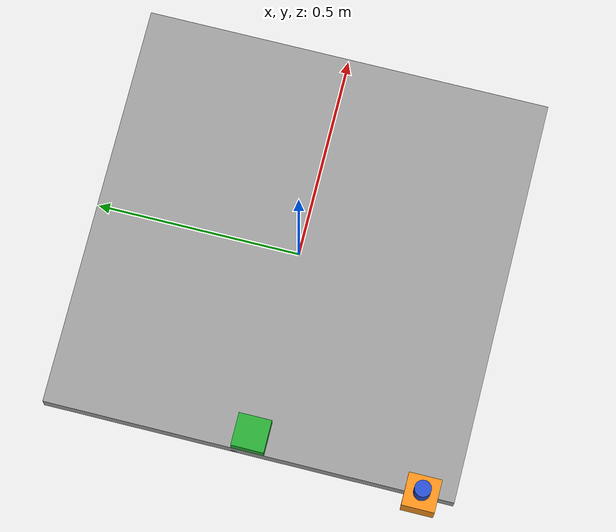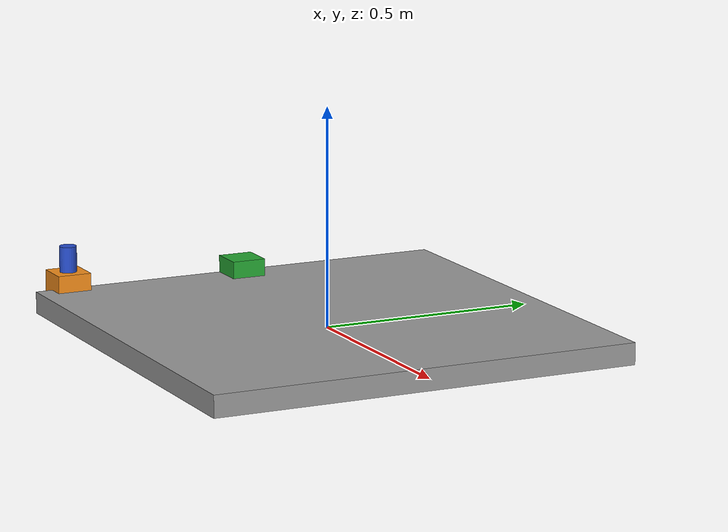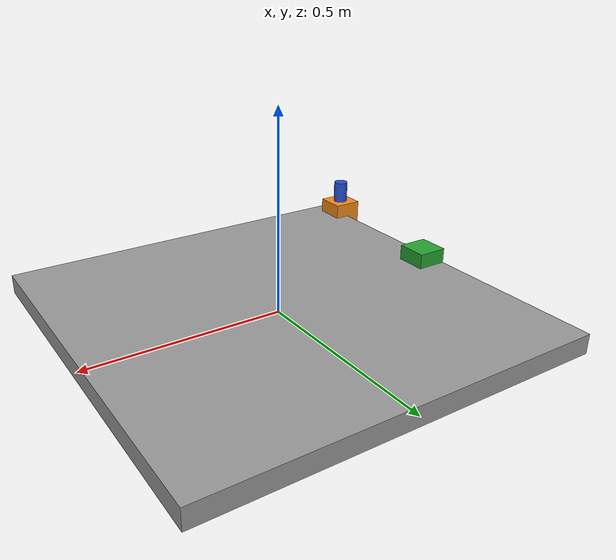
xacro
<?xml version="1.0"?>
<robot xmlns:xacro="http://www.ros.org/wiki/xacro" name="odrive_gantry">
  <xacro:arg name="prefix" default=""/>
  <xacro:arg name="use_simulated_odrive" default="true"/>
  <xacro:arg name="can_interface" default="can0"/>
  <!-- Allow the caller to pass the share path so we don't rely on $(find ...) -->
  <xacro:arg name="pkg_share" default="$(find-pkg-share odrive_gantry_moveit_example)"/>

  <xacro:include filename="$(arg pkg_share)/description/urdf/gantry_description.urdf.xacro"/>
  <xacro:include filename="$(arg pkg_share)/description/urdf/gantry.ros2_control.xacro"/>

  <xacro:planar_gantry prefix="$(arg prefix)"/>
  <xacro:gantry_ros2_control
    name="ODriveGantry"
    prefix="$(arg prefix)"
    use_simulated_odrive="$(arg use_simulated_odrive)"
    can_interface="$(arg can_interface)"/>
</robot>

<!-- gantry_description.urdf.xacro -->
<robot xmlns:xacro="http://www.ros.org/wiki/xacro">

  <xacro:macro name="planar_gantry" params="prefix">
    <xacro:property name="rail_length" value="1.0"/>
    <xacro:property name="rail_height" value="0.05"/>
    <xacro:property name="cart_size" value="0.08"/>
    <xacro:property name="tool_height" value="0.1"/>

    <link name="${prefix}base_link">
      <visual>
        <origin xyz="0 0 0" rpy="0 0 0"/>
        <geometry>
          <box size="${rail_length} ${rail_length} ${rail_height}"/>
        </geometry>
        <material name="gray"/>
      </visual>
      <collision>
        <origin xyz="0 0 0" rpy="0 0 0"/>
        <geometry>
          <box size="${rail_length} ${rail_length} ${rail_height}"/>
        </geometry>
      </collision>
      <inertial>
        <mass value="1.0"/>
        <origin xyz="0 0 0" rpy="0 0 0"/>
        <inertia ixx="0.05" ixy="0.0" ixz="0.0" iyy="0.05" iyz="0.0" izz="0.05"/>
      </inertial>
    </link>

    <joint name="${prefix}x_joint" type="prismatic">
      <parent link="${prefix}base_link"/>
      <child link="${prefix}x_cart"/>
      <origin xyz="${-rail_length/2} 0 ${rail_height/2}" rpy="0 0 0"/>
      <axis xyz="1 0 0"/>
      <limit lower="-0.4" upper="0.4" effort="40" velocity="0.5"/>
      <dynamics damping="0.1"/>
    </joint>

    <link name="${prefix}x_cart">
      <visual>
        <origin xyz="${cart_size/2} 0 0" rpy="0 0 0"/>
        <geometry>
          <box size="${cart_size} ${cart_size} ${cart_size}"/>
        </geometry>
        <material name="green"/>
      </visual>
      <collision>
        <origin xyz="${cart_size/2} 0 0" rpy="0 0 0"/>
        <geometry>
          <box size="${cart_size} ${cart_size} ${cart_size}"/>
        </geometry>
      </collision>
      <inertial>
        <mass value="0.5"/>
        <origin xyz="0 0 0" rpy="0 0 0"/>
        <inertia ixx="0.01" ixy="0.0" ixz="0.0" iyy="0.01" iyz="0.0" izz="0.01"/>
      </inertial>
    </link>

    <joint name="${prefix}y_joint" type="prismatic">
      <parent link="${prefix}x_cart"/>
      <child link="${prefix}y_cart"/>
      <origin xyz="0 ${-rail_length/2 + cart_size/2} 0" rpy="0 0 0"/>
      <axis xyz="0 1 0"/>
      <limit lower="-0.4" upper="0.4" effort="40" velocity="0.5"/>
      <dynamics damping="0.1"/>
    </joint>

    <link name="${prefix}y_cart">
      <visual>
        <origin xyz="0 ${cart_size/2} 0" rpy="0 0 0"/>
        <geometry>
          <box size="${cart_size} ${cart_size} ${cart_size}"/>
        </geometry>
        <material name="orange"/>
      </visual>
      <collision>
        <origin xyz="0 ${cart_size/2} 0" rpy="0 0 0"/>
        <geometry>
          <box size="${cart_size} ${cart_size} ${cart_size}"/>
        </geometry>
      </collision>
      <inertial>
        <mass value="0.5"/>
        <origin xyz="0 0 0" rpy="0 0 0"/>
        <inertia ixx="0.01" ixy="0.0" ixz="0.0" iyy="0.01" iyz="0.0" izz="0.01"/>
      </inertial>
    </link>

    <joint name="${prefix}yaw_joint" type="revolute">
      <parent link="${prefix}y_cart"/>
      <child link="${prefix}tool0"/>
      <origin xyz="0 ${cart_size/2} 0" rpy="0 0 0"/>
      <axis xyz="0 0 1"/>
      <limit lower="-3.1415" upper="3.1415" effort="20" velocity="1.5"/>
      <dynamics damping="0.05"/>
    </joint>

    <link name="${prefix}tool0">
      <visual>
        <origin xyz="0 0 ${tool_height/2}" rpy="0 0 0"/>
        <geometry>
          <cylinder length="${tool_height}" radius="0.02"/>
        </geometry>
        <material name="blue"/>
      </visual>
      <collision>
        <origin xyz="0 0 ${tool_height/2}" rpy="0 0 0"/>
        <geometry>
          <cylinder length="${tool_height}" radius="0.02"/>
        </geometry>
      </collision>
      <inertial>
        <mass value="0.2"/>
        <origin xyz="0 0 0" rpy="0 0 0"/>
        <inertia ixx="0.001" ixy="0.0" ixz="0.0" iyy="0.001" iyz="0.0" izz="0.001"/>
      </inertial>
    </link>
  </xacro:macro>

</robot>
